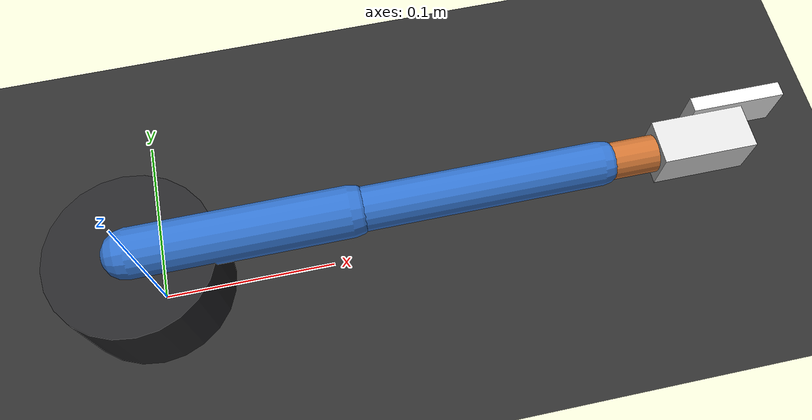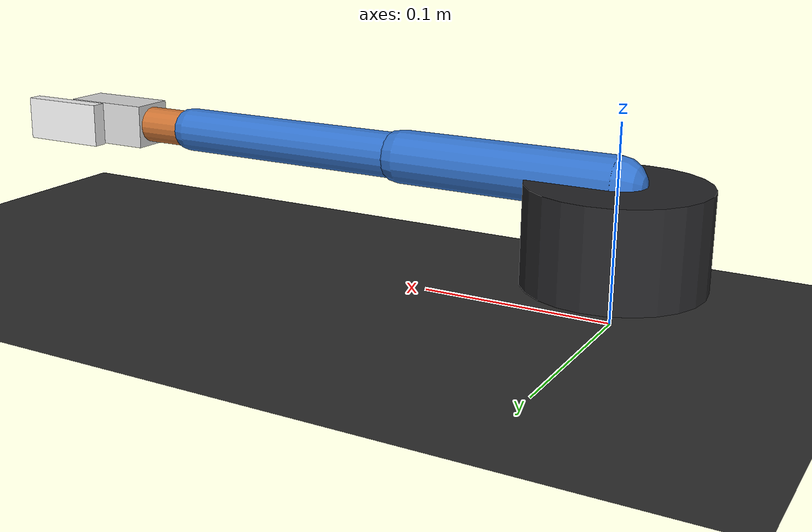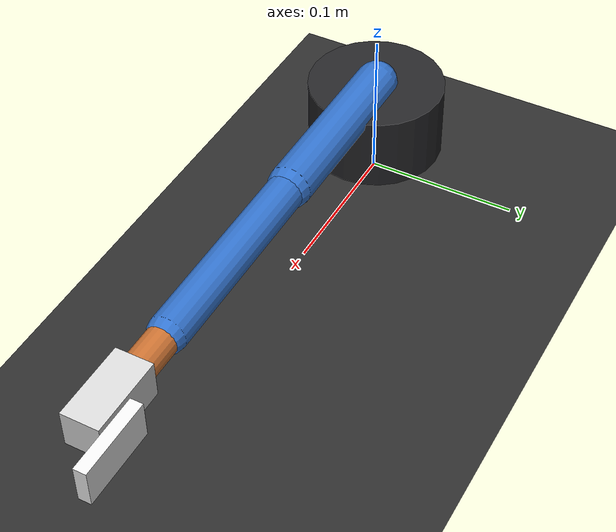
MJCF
<mujoco model="so101_minimal">
  <compiler angle="radian"/>

  <option timestep="0.005" gravity="0 0 -9.81"/>

  <default>
    <joint damping="0.04" armature="0.002"/>
    <geom type="capsule" size="0.012" rgba="0.2 0.45 0.8 1"/>
    <position kp="12" kv="1.2"/>
  </default>

  <worldbody>
    <light pos="0 -0.4 0.8" dir="0 0 -1"/>
    <geom name="table" type="plane" size="0.45 0.45 0.02" rgba="0.18 0.18 0.18 1"/>

    <body name="base" pos="0 0 0.045">
      <geom name="base_geom" type="cylinder" size="0.045 0.025" rgba="0.15 0.15 0.16 1"/>
      <joint name="shoulder_pan" type="hinge" axis="0 0 1" range="-1.745 1.745"/>

      <body name="shoulder" pos="0 0 0.025">
        <joint name="shoulder_lift" type="hinge" axis="0 1 0" range="-1.658 1.658"/>
        <geom name="upper_arm_geom" fromto="0 0 0 0.115 0 0" size="0.014"/>

        <body name="elbow" pos="0.115 0 0">
          <joint name="elbow_flex" type="hinge" axis="0 1 0" range="-1.92 1.92"/>
          <geom name="forearm_geom" fromto="0 0 0 0.135 0 0" size="0.012"/>

          <body name="wrist" pos="0.135 0 0">
            <joint name="wrist_flex" type="hinge" axis="0 1 0" range="-1.745 1.745"/>
            <geom name="wrist_geom" fromto="0 0 0 0.055 0 0" size="0.01" rgba="0.8 0.45 0.2 1"/>

            <body name="tool" pos="0.055 0 0">
              <joint name="wrist_roll" type="hinge" axis="1 0 0" range="-3.1416 3.1416"/>
              <geom name="tool_geom" type="box" size="0.025 0.012 0.012" rgba="0.85 0.85 0.85 1"/>
              <body name="gripper_left" pos="0.025 0.018 0">
                <joint name="gripper" type="slide" axis="0 1 0" range="0 0.025"/>
                <geom name="gripper_left_geom" type="box" size="0.025 0.004 0.012" rgba="0.95 0.95 0.95 1"/>
              </body>
            </body>
          </body>
        </body>
      </body>
    </body>
  </worldbody>

  <actuator>
    <position name="shoulder_pan.pos" joint="shoulder_pan" ctrlrange="-1.745 1.745"/>
    <position name="shoulder_lift.pos" joint="shoulder_lift" ctrlrange="-1.658 1.658"/>
    <position name="elbow_flex.pos" joint="elbow_flex" ctrlrange="-1.92 1.92"/>
    <position name="wrist_flex.pos" joint="wrist_flex" ctrlrange="-1.745 1.745"/>
    <position name="wrist_roll.pos" joint="wrist_roll" ctrlrange="-3.1416 3.1416"/>
    <position name="gripper.pos" joint="gripper" ctrlrange="0 0.025"/>
  </actuator>
</mujoco>
